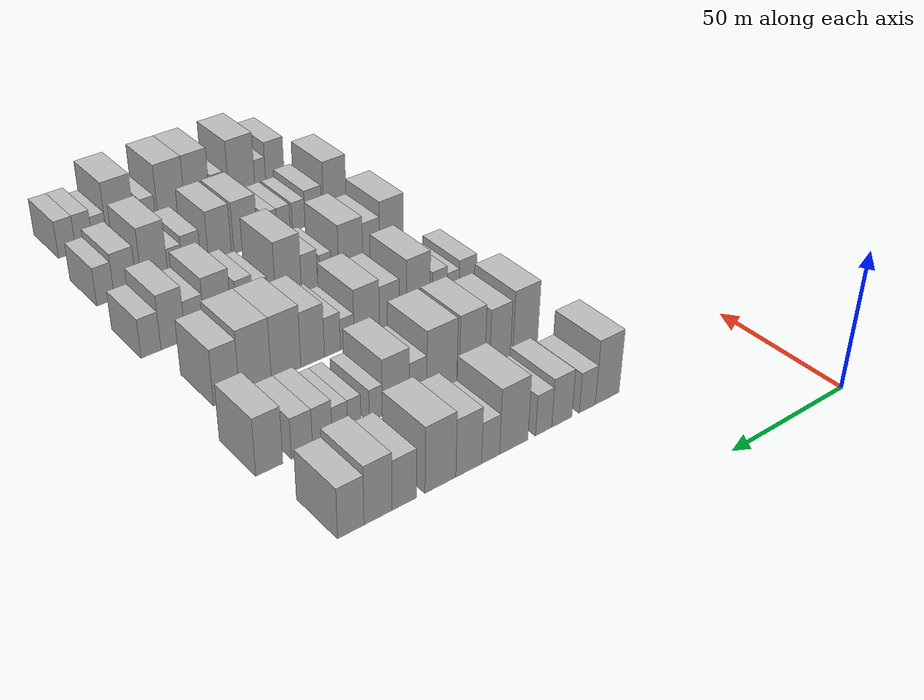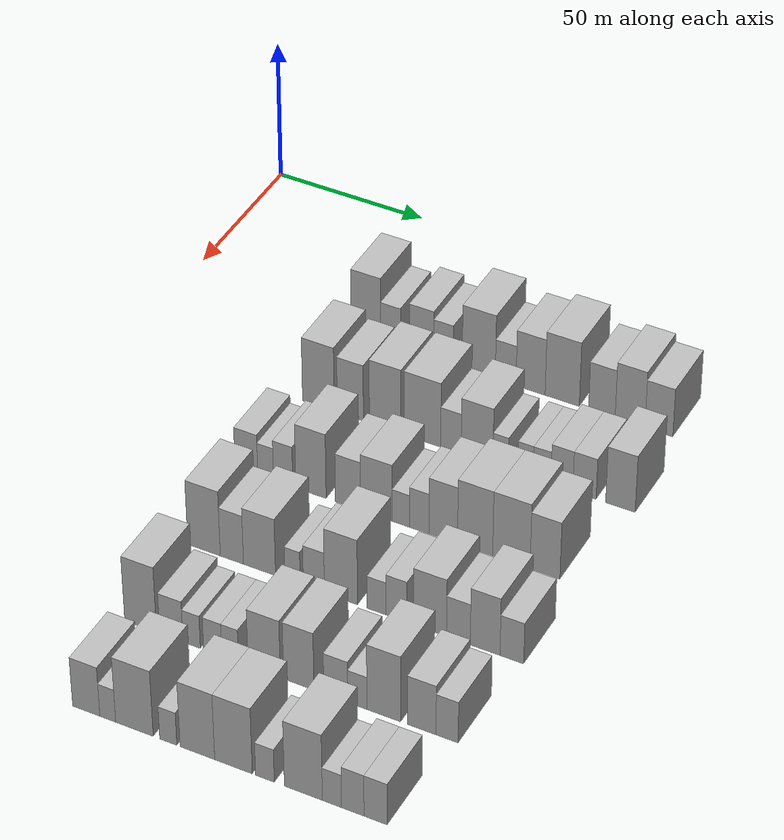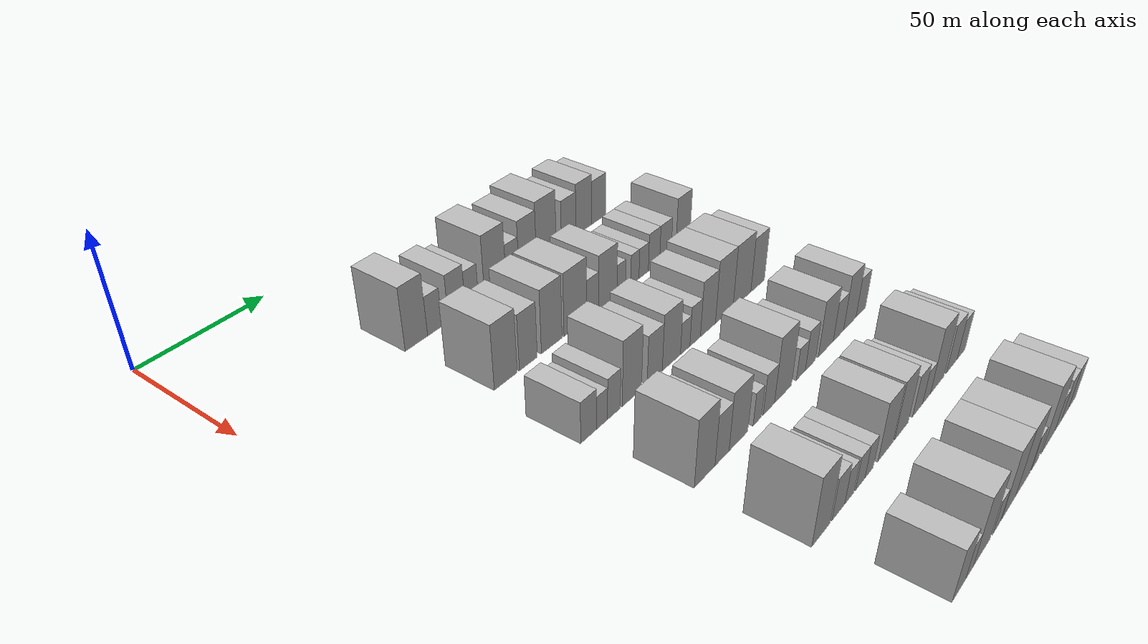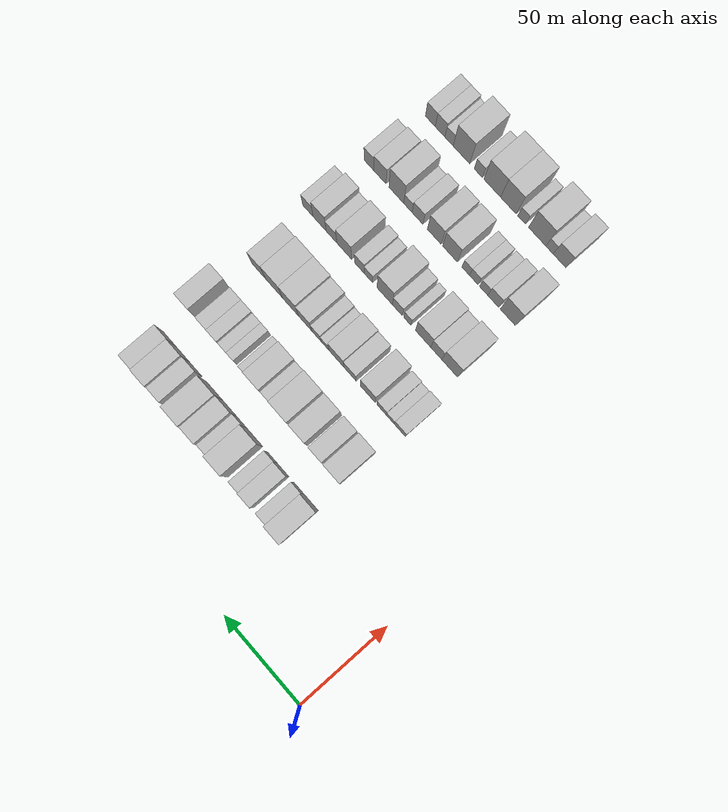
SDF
<sdf version="1.6">
 <world name="default">
  <model name="building_71">
   <static>1</static>
   <pose>50.0000 61.7541 0 0.000000 0.000000 0.000000</pose>
   <link name="link">
    <pose>0 0 12.00 0 0 0</pose>
    <collision name="collision"><geometry><box><size>20.0000 10.0399 24.0000</size></box></geometry></collision>
    <visual name="visual">
     <cast_shadows>0</cast_shadows>
     <geometry><box><size>20.0000 10.0399 24.0000</size></box></geometry>
     <material>
      <script>
       <uri>model://HANNAS_wall/materials/scripts</uri>
       <uri>model://HANNAS_wall/materials/textures</uri>
       <name>vrc/HANNAS_wall</name>
      </script>
     </material>
    </visual>
   </link>
  </model>
  <model name="building_72">
   <static>1</static>
   <pose>50.0000 70.1009 0 0.000000 0.000000 0.000000</pose>
   <link name="link">
    <pose>0 0 7.50 0 0 0</pose>
    <collision name="collision"><geometry><box><size>20.0000 6.6538 15.0000</size></box></geometry></collision>
    <visual name="visual">
     <cast_shadows>0</cast_shadows>
     <geometry><box><size>20.0000 6.6538 15.0000</size></box></geometry>
     <material>
      <script>
       <uri>model://HANNAS_wall/materials/scripts</uri>
       <uri>model://HANNAS_wall/materials/textures</uri>
       <name>vrc/HANNAS_wall</name>
      </script>
     </material>
    </visual>
   </link>
  </model>
  <model name="building_73">
   <static>1</static>
   <pose>50.0000 80.5218 0 0.000000 0.000000 0.000000</pose>
   <link name="link">
    <pose>0 0 9.00 0 0 0</pose>
    <collision name="collision"><geometry><box><size>20.0000 8.1881 18.0000</size></box></geometry></collision>
    <visual name="visual">
     <cast_shadows>0</cast_shadows>
     <geometry><box><size>20.0000 8.1881 18.0000</size></box></geometry>
     <material>
      <script>
       <uri>model://HANNAS_wall/materials/scripts</uri>
       <uri>model://HANNAS_wall/materials/textures</uri>
       <name>vrc/HANNAS_wall</name>
      </script>
     </material>
    </visual>
   </link>
  </model>
  <model name="building_74">
   <static>1</static>
   <pose>50.0000 87.8387 0 0.000000 0.000000 0.000000</pose>
   <link name="link">
    <pose>0 0 7.50 0 0 0</pose>
    <collision name="collision"><geometry><box><size>20.0000 6.4455 15.0000</size></box></geometry></collision>
    <visual name="visual">
     <cast_shadows>0</cast_shadows>
     <geometry><box><size>20.0000 6.4455 15.0000</size></box></geometry>
     <material>
      <script>
       <uri>model://HANNAS_wall/materials/scripts</uri>
       <uri>model://HANNAS_wall/materials/textures</uri>
       <name>vrc/HANNAS_wall</name>
      </script>
     </material>
    </visual>
   </link>
  </model>
  <model name="building_75">
   <static>1</static>
   <pose>50.0000 99.5587 0 0.000000 0.000000 0.000000</pose>
   <link name="link">
    <pose>0 0 12.00 0 0 0</pose>
    <collision name="collision"><geometry><box><size>20.0000 10.9945 24.0000</size></box></geometry></collision>
    <visual name="visual">
     <cast_shadows>0</cast_shadows>
     <geometry><box><size>20.0000 10.9945 24.0000</size></box></geometry>
     <material>
      <script>
       <uri>model://HANNAS_wall/materials/scripts</uri>
       <uri>model://HANNAS_wall/materials/textures</uri>
       <name>vrc/HANNAS_wall</name>
      </script>
     </material>
    </visual>
   </link>
  </model>
  <model name="building_76">
   <static>1</static>
   <pose>50.0000 108.4720 0 0.000000 0.000000 0.000000</pose>
   <link name="link">
    <pose>0 0 7.50 0 0 0</pose>
    <collision name="collision"><geometry><box><size>20.0000 6.8321 15.0000</size></box></geometry></collision>
    <visual name="visual">
     <cast_shadows>0</cast_shadows>
     <geometry><box><size>20.0000 6.8321 15.0000</size></box></geometry>
     <material>
      <script>
       <uri>model://HANNAS_wall/materials/scripts</uri>
       <uri>model://HANNAS_wall/materials/textures</uri>
       <name>vrc/HANNAS_wall</name>
      </script>
     </material>
    </visual>
   </link>
  </model>
  <model name="building_77">
   <static>1</static>
   <pose>50.0000 116.6482 0 0.000000 0.000000 0.000000</pose>
   <link name="link">
    <pose>0 0 10.50 0 0 0</pose>
    <collision name="collision"><geometry><box><size>20.0000 9.5204 21.0000</size></box></geometry></collision>
    <visual name="visual">
     <cast_shadows>0</cast_shadows>
     <geometry><box><size>20.0000 9.5204 21.0000</size></box></geometry>
     <material>
      <script>
       <uri>model://HANNAS_wall/materials/scripts</uri>
       <uri>model://HANNAS_wall/materials/textures</uri>
       <name>vrc/HANNAS_wall</name>
      </script>
     </material>
    </visual>
   </link>
  </model>
  <model name="building_78">
   <static>1</static>
   <pose>50.0000 126.9865 0 0.000000 0.000000 0.000000</pose>
   <link name="link">
    <pose>0 0 12.00 0 0 0</pose>
    <collision name="collision"><geometry><box><size>20.0000 11.1562 24.0000</size></box></geometry></collision>
    <visual name="visual">
     <cast_shadows>0</cast_shadows>
     <geometry><box><size>20.0000 11.1562 24.0000</size></box></geometry>
     <material>
      <script>
       <uri>model://HANNAS_wall/materials/scripts</uri>
       <uri>model://HANNAS_wall/materials/textures</uri>
       <name>vrc/HANNAS_wall</name>
      </script>
     </material>
    </visual>
   </link>
  </model>
  <model name="building_79">
   <static>1</static>
   <pose>50.0000 139.8486 0 0.000000 0.000000 0.000000</pose>
   <link name="link">
    <pose>0 0 9.00 0 0 0</pose>
    <collision name="collision"><geometry><box><size>20.0000 8.5680 18.0000</size></box></geometry></collision>
    <visual name="visual">
     <cast_shadows>0</cast_shadows>
     <geometry><box><size>20.0000 8.5680 18.0000</size></box></geometry>
     <material>
      <script>
       <uri>model://HANNAS_wall/materials/scripts</uri>
       <uri>model://HANNAS_wall/materials/textures</uri>
       <name>vrc/HANNAS_wall</name>
      </script>
     </material>
    </visual>
   </link>
  </model>
  <model name="building_80">
   <static>1</static>
   <pose>50.0000 148.9144 0 0.000000 0.000000 0.000000</pose>
   <link name="link">
    <pose>0 0 10.50 0 0 0</pose>
    <collision name="collision"><geometry><box><size>20.0000 9.5637 21.0000</size></box></geometry></collision>
    <visual name="visual">
     <cast_shadows>0</cast_shadows>
     <geometry><box><size>20.0000 9.5637 21.0000</size></box></geometry>
     <material>
      <script>
       <uri>model://HANNAS_wall/materials/scripts</uri>
       <uri>model://HANNAS_wall/materials/textures</uri>
       <name>vrc/HANNAS_wall</name>
      </script>
     </material>
    </visual>
   </link>
  </model>
  <model name="building_81">
   <static>1</static>
   <pose>50.0000 158.1502 0 0.000000 0.000000 0.000000</pose>
   <link name="link">
    <pose>0 0 9.00 0 0 0</pose>
    <collision name="collision"><geometry><box><size>20.0000 8.9079 18.0000</size></box></geometry></collision>
    <visual name="visual">
     <cast_shadows>0</cast_shadows>
     <geometry><box><size>20.0000 8.9079 18.0000</size></box></geometry>
     <material>
      <script>
       <uri>model://HANNAS_wall/materials/scripts</uri>
       <uri>model://HANNAS_wall/materials/textures</uri>
       <name>vrc/HANNAS_wall</name>
      </script>
     </material>
    </visual>
   </link>
  </model>
  <model name="building_196">
   <static>1</static>
   <pose>85.0000 64.3721 0 0.000000 0.000000 0.000000</pose>
   <link name="link">
    <pose>0 0 12.00 0 0 0</pose>
    <collision name="collision"><geometry><box><size>20.0000 10.5826 24.0000</size></box></geometry></collision>
    <visual name="visual">
     <cast_shadows>0</cast_shadows>
     <geometry><box><size>20.0000 10.5826 24.0000</size></box></geometry>
     <material>
      <script>
       <uri>model://HANNAS_wall/materials/scripts</uri>
       <uri>model://HANNAS_wall/materials/textures</uri>
       <name>vrc/HANNAS_wall</name>
      </script>
     </material>
    </visual>
   </link>
  </model>
  <model name="building_197">
   <static>1</static>
   <pose>85.0000 74.9845 0 0.000000 0.000000 0.000000</pose>
   <link name="link">
    <pose>0 0 10.50 0 0 0</pose>
    <collision name="collision"><geometry><box><size>20.0000 8.6422 21.0000</size></box></geometry></collision>
    <visual name="visual">
     <cast_shadows>0</cast_shadows>
     <geometry><box><size>20.0000 8.6422 21.0000</size></box></geometry>
     <material>
      <script>
       <uri>model://HANNAS_wall/materials/scripts</uri>
       <uri>model://HANNAS_wall/materials/textures</uri>
       <name>vrc/HANNAS_wall</name>
      </script>
     </material>
    </visual>
   </link>
  </model>
  <model name="building_198">
   <static>1</static>
   <pose>85.0000 86.4970 0 0.000000 0.000000 0.000000</pose>
   <link name="link">
    <pose>0 0 12.00 0 0 0</pose>
    <collision name="collision"><geometry><box><size>20.0000 10.3829 24.0000</size></box></geometry></collision>
    <visual name="visual">
     <cast_shadows>0</cast_shadows>
     <geometry><box><size>20.0000 10.3829 24.0000</size></box></geometry>
     <material>
      <script>
       <uri>model://HANNAS_wall/materials/scripts</uri>
       <uri>model://HANNAS_wall/materials/textures</uri>
       <name>vrc/HANNAS_wall</name>
      </script>
     </material>
    </visual>
   </link>
  </model>
  <model name="building_199">
   <static>1</static>
   <pose>85.0000 98.6507 0 0.000000 0.000000 0.000000</pose>
   <link name="link">
    <pose>0 0 12.00 0 0 0</pose>
    <collision name="collision"><geometry><box><size>20.0000 11.9244 24.0000</size></box></geometry></collision>
    <visual name="visual">
     <cast_shadows>0</cast_shadows>
     <geometry><box><size>20.0000 11.9244 24.0000</size></box></geometry>
     <material>
      <script>
       <uri>model://HANNAS_wall/materials/scripts</uri>
       <uri>model://HANNAS_wall/materials/textures</uri>
       <name>vrc/HANNAS_wall</name>
      </script>
     </material>
    </visual>
   </link>
  </model>
  <model name="building_200">
   <static>1</static>
   <pose>85.0000 107.9193 0 0.000000 0.000000 0.000000</pose>
   <link name="link">
    <pose>0 0 7.50 0 0 0</pose>
    <collision name="collision"><geometry><box><size>20.0000 6.6128 15.0000</size></box></geometry></collision>
    <visual name="visual">
     <cast_shadows>0</cast_shadows>
     <geometry><box><size>20.0000 6.6128 15.0000</size></box></geometry>
     <material>
      <script>
       <uri>model://HANNAS_wall/materials/scripts</uri>
       <uri>model://HANNAS_wall/materials/textures</uri>
       <name>vrc/HANNAS_wall</name>
      </script>
     </material>
    </visual>
   </link>
  </model>
  <model name="building_201">
   <static>1</static>
   <pose>85.0000 116.3655 0 0.000000 0.000000 0.000000</pose>
   <link name="link">
    <pose>0 0 10.50 0 0 0</pose>
    <collision name="collision"><geometry><box><size>20.0000 10.2796 21.0000</size></box></geometry></collision>
    <visual name="visual">
     <cast_shadows>0</cast_shadows>
     <geometry><box><size>20.0000 10.2796 21.0000</size></box></geometry>
     <material>
      <script>
       <uri>model://HANNAS_wall/materials/scripts</uri>
       <uri>model://HANNAS_wall/materials/textures</uri>
       <name>vrc/HANNAS_wall</name>
      </script>
     </material>
    </visual>
   </link>
  </model>
  <model name="building_202">
   <static>1</static>
   <pose>85.0000 123.9801 0 0.000000 0.000000 0.000000</pose>
   <link name="link">
    <pose>0 0 6.00 0 0 0</pose>
    <collision name="collision"><geometry><box><size>20.0000 4.9497 12.0000</size></box></geometry></collision>
    <visual name="visual">
     <cast_shadows>0</cast_shadows>
     <geometry><box><size>20.0000 4.9497 12.0000</size></box></geometry>
     <material>
      <script>
       <uri>model://HANNAS_wall/materials/scripts</uri>
       <uri>model://HANNAS_wall/materials/textures</uri>
       <name>vrc/HANNAS_wall</name>
      </script>
     </material>
    </visual>
   </link>
  </model>
  <model name="building_203">
   <static>1</static>
   <pose>85.0000 131.8973 0 0.000000 0.000000 0.000000</pose>
   <link name="link">
    <pose>0 0 6.00 0 0 0</pose>
    <collision name="collision"><geometry><box><size>20.0000 4.8847 12.0000</size></box></geometry></collision>
    <visual name="visual">
     <cast_shadows>0</cast_shadows>
     <geometry><box><size>20.0000 4.8847 12.0000</size></box></geometry>
     <material>
      <script>
       <uri>model://HANNAS_wall/materials/scripts</uri>
       <uri>model://HANNAS_wall/materials/textures</uri>
       <name>vrc/HANNAS_wall</name>
      </script>
     </material>
    </visual>
   </link>
  </model>
  <model name="building_204">
   <static>1</static>
   <pose>85.0000 137.1757 0 0.000000 0.000000 0.000000</pose>
   <link name="link">
    <pose>0 0 6.00 0 0 0</pose>
    <collision name="collision"><geometry><box><size>20.0000 5.6721 12.0000</size></box></geometry></collision>
    <visual name="visual">
     <cast_shadows>0</cast_shadows>
     <geometry><box><size>20.0000 5.6721 12.0000</size></box></geometry>
     <material>
      <script>
       <uri>model://HANNAS_wall/materials/scripts</uri>
       <uri>model://HANNAS_wall/materials/textures</uri>
       <name>vrc/HANNAS_wall</name>
      </script>
     </material>
    </visual>
   </link>
  </model>
  <model name="building_205">
   <static>1</static>
   <pose>85.0000 143.5025 0 0.000000 0.000000 0.000000</pose>
   <link name="link">
    <pose>0 0 7.50 0 0 0</pose>
    <collision name="collision"><geometry><box><size>20.0000 6.9814 15.0000</size></box></geometry></collision>
    <visual name="visual">
     <cast_shadows>0</cast_shadows>
     <geometry><box><size>20.0000 6.9814 15.0000</size></box></geometry>
     <material>
      <script>
       <uri>model://HANNAS_wall/materials/scripts</uri>
       <uri>model://HANNAS_wall/materials/textures</uri>
       <name>vrc/HANNAS_wall</name>
      </script>
     </material>
    </visual>
   </link>
  </model>
  <model name="building_206">
   <static>1</static>
   <pose>85.0000 150.6519 0 0.000000 0.000000 0.000000</pose>
   <link name="link">
    <pose>0 0 7.50 0 0 0</pose>
    <collision name="collision"><geometry><box><size>20.0000 7.3173 15.0000</size></box></geometry></collision>
    <visual name="visual">
     <cast_shadows>0</cast_shadows>
     <geometry><box><size>20.0000 7.3173 15.0000</size></box></geometry>
     <material>
      <script>
       <uri>model://HANNAS_wall/materials/scripts</uri>
       <uri>model://HANNAS_wall/materials/textures</uri>
       <name>vrc/HANNAS_wall</name>
      </script>
     </material>
    </visual>
   </link>
  </model>
  <model name="building_207">
   <static>1</static>
   <pose>85.0000 161.9332 0 0.000000 0.000000 0.000000</pose>
   <link name="link">
    <pose>0 0 10.50 0 0 0</pose>
    <collision name="collision"><geometry><box><size>20.0000 9.2454 21.0000</size></box></geometry></collision>
    <visual name="visual">
     <cast_shadows>0</cast_shadows>
     <geometry><box><size>20.0000 9.2454 21.0000</size></box></geometry>
     <material>
      <script>
       <uri>model://HANNAS_wall/materials/scripts</uri>
       <uri>model://HANNAS_wall/materials/textures</uri>
       <name>vrc/HANNAS_wall</name>
      </script>
     </material>
    </visual>
   </link>
  </model>
  <model name="building_322">
   <static>1</static>
   <pose>120.0000 59.6474 0 0.000000 0.000000 0.000000</pose>
   <link name="link">
    <pose>0 0 7.50 0 0 0</pose>
    <collision name="collision"><geometry><box><size>20.0000 7.4870 15.0000</size></box></geometry></collision>
    <visual name="visual">
     <cast_shadows>0</cast_shadows>
     <geometry><box><size>20.0000 7.4870 15.0000</size></box></geometry>
     <material>
      <script>
       <uri>model://HANNAS_wall/materials/scripts</uri>
       <uri>model://HANNAS_wall/materials/textures</uri>
       <name>vrc/HANNAS_wall</name>
      </script>
     </material>
    </visual>
   </link>
  </model>
  <model name="building_323">
   <static>1</static>
   <pose>120.0000 65.9803 0 0.000000 0.000000 0.000000</pose>
   <link name="link">
    <pose>0 0 6.00 0 0 0</pose>
    <collision name="collision"><geometry><box><size>20.0000 5.1787 12.0000</size></box></geometry></collision>
    <visual name="visual">
     <cast_shadows>0</cast_shadows>
     <geometry><box><size>20.0000 5.1787 12.0000</size></box></geometry>
     <material>
      <script>
       <uri>model://HANNAS_wall/materials/scripts</uri>
       <uri>model://HANNAS_wall/materials/textures</uri>
       <name>vrc/HANNAS_wall</name>
      </script>
     </material>
    </visual>
   </link>
  </model>
  <model name="building_324">
   <static>1</static>
   <pose>120.0000 71.7191 0 0.000000 0.000000 0.000000</pose>
   <link name="link">
    <pose>0 0 7.50 0 0 0</pose>
    <collision name="collision"><geometry><box><size>20.0000 6.2989 15.0000</size></box></geometry></collision>
    <visual name="visual">
     <cast_shadows>0</cast_shadows>
     <geometry><box><size>20.0000 6.2989 15.0000</size></box></geometry>
     <material>
      <script>
       <uri>model://HANNAS_wall/materials/scripts</uri>
       <uri>model://HANNAS_wall/materials/textures</uri>
       <name>vrc/HANNAS_wall</name>
      </script>
     </material>
    </visual>
   </link>
  </model>
  <model name="building_325">
   <static>1</static>
   <pose>120.0000 80.7890 0 0.000000 0.000000 0.000000</pose>
   <link name="link">
    <pose>0 0 12.00 0 0 0</pose>
    <collision name="collision"><geometry><box><size>20.0000 9.8409 24.0000</size></box></geometry></collision>
    <visual name="visual">
     <cast_shadows>0</cast_shadows>
     <geometry><box><size>20.0000 9.8409 24.0000</size></box></geometry>
     <material>
      <script>
       <uri>model://HANNAS_wall/materials/scripts</uri>
       <uri>model://HANNAS_wall/materials/textures</uri>
       <name>vrc/HANNAS_wall</name>
      </script>
     </material>
    </visual>
   </link>
  </model>
  <model name="building_326">
   <static>1</static>
   <pose>120.0000 92.7691 0 0.000000 0.000000 0.000000</pose>
   <link name="link">
    <pose>0 0 9.00 0 0 0</pose>
    <collision name="collision"><geometry><box><size>20.0000 8.1193 18.0000</size></box></geometry></collision>
    <visual name="visual">
     <cast_shadows>0</cast_shadows>
     <geometry><box><size>20.0000 8.1193 18.0000</size></box></geometry>
     <material>
      <script>
       <uri>model://HANNAS_wall/materials/scripts</uri>
       <uri>model://HANNAS_wall/materials/textures</uri>
       <name>vrc/HANNAS_wall</name>
      </script>
     </material>
    </visual>
   </link>
  </model>
  <model name="building_327">
   <static>1</static>
   <pose>120.0000 101.8845 0 0.000000 0.000000 0.000000</pose>
   <link name="link">
    <pose>0 0 10.50 0 0 0</pose>
    <collision name="collision"><geometry><box><size>20.0000 10.1113 21.0000</size></box></geometry></collision>
    <visual name="visual">
     <cast_shadows>0</cast_shadows>
     <geometry><box><size>20.0000 10.1113 21.0000</size></box></geometry>
     <material>
      <script>
       <uri>model://HANNAS_wall/materials/scripts</uri>
       <uri>model://HANNAS_wall/materials/textures</uri>
       <name>vrc/HANNAS_wall</name>
      </script>
     </material>
    </visual>
   </link>
  </model>
  <model name="building_328">
   <static>1</static>
   <pose>120.0000 109.6472 0 0.000000 0.000000 0.000000</pose>
   <link name="link">
    <pose>0 0 6.00 0 0 0</pose>
    <collision name="collision"><geometry><box><size>20.0000 5.4142 12.0000</size></box></geometry></collision>
    <visual name="visual">
     <cast_shadows>0</cast_shadows>
     <geometry><box><size>20.0000 5.4142 12.0000</size></box></geometry>
     <material>
      <script>
       <uri>model://HANNAS_wall/materials/scripts</uri>
       <uri>model://HANNAS_wall/materials/textures</uri>
       <name>vrc/HANNAS_wall</name>
      </script>
     </material>
    </visual>
   </link>
  </model>
  <model name="building_329">
   <static>1</static>
   <pose>120.0000 115.4633 0 0.000000 0.000000 0.000000</pose>
   <link name="link">
    <pose>0 0 7.50 0 0 0</pose>
    <collision name="collision"><geometry><box><size>20.0000 6.2179 15.0000</size></box></geometry></collision>
    <visual name="visual">
     <cast_shadows>0</cast_shadows>
     <geometry><box><size>20.0000 6.2179 15.0000</size></box></geometry>
     <material>
      <script>
       <uri>model://HANNAS_wall/materials/scripts</uri>
       <uri>model://HANNAS_wall/materials/textures</uri>
       <name>vrc/HANNAS_wall</name>
      </script>
     </material>
    </visual>
   </link>
  </model>
  <model name="building_330">
   <static>1</static>
   <pose>120.0000 123.0967 0 0.000000 0.000000 0.000000</pose>
   <link name="link">
    <pose>0 0 10.50 0 0 0</pose>
    <collision name="collision"><geometry><box><size>20.0000 9.0490 21.0000</size></box></geometry></collision>
    <visual name="visual">
     <cast_shadows>0</cast_shadows>
     <geometry><box><size>20.0000 9.0490 21.0000</size></box></geometry>
     <material>
      <script>
       <uri>model://HANNAS_wall/materials/scripts</uri>
       <uri>model://HANNAS_wall/materials/textures</uri>
       <name>vrc/HANNAS_wall</name>
      </script>
     </material>
    </visual>
   </link>
  </model>
  <model name="building_331">
   <static>1</static>
   <pose>120.0000 133.1397 0 0.000000 0.000000 0.000000</pose>
   <link name="link">
    <pose>0 0 12.00 0 0 0</pose>
    <collision name="collision"><geometry><box><size>20.0000 11.0369 24.0000</size></box></geometry></collision>
    <visual name="visual">
     <cast_shadows>0</cast_shadows>
     <geometry><box><size>20.0000 11.0369 24.0000</size></box></geometry>
     <material>
      <script>
       <uri>model://HANNAS_wall/materials/scripts</uri>
       <uri>model://HANNAS_wall/materials/textures</uri>
       <name>vrc/HANNAS_wall</name>
      </script>
     </material>
    </visual>
   </link>
  </model>
  <model name="building_332">
   <static>1</static>
   <pose>120.0000 144.4785 0 0.000000 0.000000 0.000000</pose>
   <link name="link">
    <pose>0 0 12.00 0 0 0</pose>
    <collision name="collision"><geometry><box><size>20.0000 11.6407 24.0000</size></box></geometry></collision>
    <visual name="visual">
     <cast_shadows>0</cast_shadows>
     <geometry><box><size>20.0000 11.6407 24.0000</size></box></geometry>
     <material>
      <script>
       <uri>model://HANNAS_wall/materials/scripts</uri>
       <uri>model://HANNAS_wall/materials/textures</uri>
       <name>vrc/HANNAS_wall</name>
      </script>
     </material>
    </visual>
   </link>
  </model>
  <model name="building_333">
   <static>1</static>
   <pose>120.0000 154.9100 0 0.000000 0.000000 0.000000</pose>
   <link name="link">
    <pose>0 0 10.50 0 0 0</pose>
    <collision name="collision"><geometry><box><size>20.0000 9.2223 21.0000</size></box></geometry></collision>
    <visual name="visual">
     <cast_shadows>0</cast_shadows>
     <geometry><box><size>20.0000 9.2223 21.0000</size></box></geometry>
     <material>
      <script>
       <uri>model://HANNAS_wall/materials/scripts</uri>
       <uri>model://HANNAS_wall/materials/textures</uri>
       <name>vrc/HANNAS_wall</name>
      </script>
     </material>
    </visual>
   </link>
  </model>
  <model name="building_452">
   <static>1</static>
   <pose>155.0000 65.5364 0 0.000000 0.000000 0.000000</pose>
   <link name="link">
    <pose>0 0 12.00 0 0 0</pose>
    <collision name="collision"><geometry><box><size>20.0000 10.4899 24.0000</size></box></geometry></collision>
    <visual name="visual">
     <cast_shadows>0</cast_shadows>
     <geometry><box><size>20.0000 10.4899 24.0000</size></box></geometry>
     <material>
      <script>
       <uri>model://HANNAS_wall/materials/scripts</uri>
       <uri>model://HANNAS_wall/materials/textures</uri>
       <name>vrc/HANNAS_wall</name>
      </script>
     </material>
    </visual>
   </link>
  </model>
  <model name="building_453">
   <static>1</static>
   <pose>155.0000 74.4987 0 0.000000 0.000000 0.000000</pose>
   <link name="link">
    <pose>0 0 9.00 0 0 0</pose>
    <collision name="collision"><geometry><box><size>20.0000 7.4346 18.0000</size></box></geometry></collision>
    <visual name="visual">
     <cast_shadows>0</cast_shadows>
     <geometry><box><size>20.0000 7.4346 18.0000</size></box></geometry>
     <material>
      <script>
       <uri>model://HANNAS_wall/materials/scripts</uri>
       <uri>model://HANNAS_wall/materials/textures</uri>
       <name>vrc/HANNAS_wall</name>
      </script>
     </material>
    </visual>
   </link>
  </model>
  <model name="building_454">
   <static>1</static>
   <pose>155.0000 83.3402 0 0.000000 0.000000 0.000000</pose>
   <link name="link">
    <pose>0 0 10.50 0 0 0</pose>
    <collision name="collision"><geometry><box><size>20.0000 10.2484 21.0000</size></box></geometry></collision>
    <visual name="visual">
     <cast_shadows>0</cast_shadows>
     <geometry><box><size>20.0000 10.2484 21.0000</size></box></geometry>
     <material>
      <script>
       <uri>model://HANNAS_wall/materials/scripts</uri>
       <uri>model://HANNAS_wall/materials/textures</uri>
       <name>vrc/HANNAS_wall</name>
      </script>
     </material>
    </visual>
   </link>
  </model>
  <model name="building_455">
   <static>1</static>
   <pose>155.0000 93.8650 0 0.000000 0.000000 0.000000</pose>
   <link name="link">
    <pose>0 0 6.00 0 0 0</pose>
    <collision name="collision"><geometry><box><size>20.0000 4.8014 12.0000</size></box></geometry></collision>
    <visual name="visual">
     <cast_shadows>0</cast_shadows>
     <geometry><box><size>20.0000 4.8014 12.0000</size></box></geometry>
     <material>
      <script>
       <uri>model://HANNAS_wall/materials/scripts</uri>
       <uri>model://HANNAS_wall/materials/textures</uri>
       <name>vrc/HANNAS_wall</name>
      </script>
     </material>
    </visual>
   </link>
  </model>
  <model name="building_456">
   <static>1</static>
   <pose>155.0000 100.5905 0 0.000000 0.000000 0.000000</pose>
   <link name="link">
    <pose>0 0 7.50 0 0 0</pose>
    <collision name="collision"><geometry><box><size>20.0000 6.6495 15.0000</size></box></geometry></collision>
    <visual name="visual">
     <cast_shadows>0</cast_shadows>
     <geometry><box><size>20.0000 6.6495 15.0000</size></box></geometry>
     <material>
      <script>
       <uri>model://HANNAS_wall/materials/scripts</uri>
       <uri>model://HANNAS_wall/materials/textures</uri>
       <name>vrc/HANNAS_wall</name>
      </script>
     </material>
    </visual>
   </link>
  </model>
  <model name="building_457">
   <static>1</static>
   <pose>155.0000 109.1081 0 0.000000 0.000000 0.000000</pose>
   <link name="link">
    <pose>0 0 12.00 0 0 0</pose>
    <collision name="collision"><geometry><box><size>20.0000 10.3857 24.0000</size></box></geometry></collision>
    <visual name="visual">
     <cast_shadows>0</cast_shadows>
     <geometry><box><size>20.0000 10.3857 24.0000</size></box></geometry>
     <material>
      <script>
       <uri>model://HANNAS_wall/materials/scripts</uri>
       <uri>model://HANNAS_wall/materials/textures</uri>
       <name>vrc/HANNAS_wall</name>
      </script>
     </material>
    </visual>
   </link>
  </model>
  <model name="building_458">
   <static>1</static>
   <pose>155.0000 120.2026 0 0.000000 0.000000 0.000000</pose>
   <link name="link">
    <pose>0 0 6.00 0 0 0</pose>
    <collision name="collision"><geometry><box><size>20.0000 5.8034 12.0000</size></box></geometry></collision>
    <visual name="visual">
     <cast_shadows>0</cast_shadows>
     <geometry><box><size>20.0000 5.8034 12.0000</size></box></geometry>
     <material>
      <script>
       <uri>model://HANNAS_wall/materials/scripts</uri>
       <uri>model://HANNAS_wall/materials/textures</uri>
       <name>vrc/HANNAS_wall</name>
      </script>
     </material>
    </visual>
   </link>
  </model>
  <model name="building_459">
   <static>1</static>
   <pose>155.0000 126.3788 0 0.000000 0.000000 0.000000</pose>
   <link name="link">
    <pose>0 0 7.50 0 0 0</pose>
    <collision name="collision"><geometry><box><size>20.0000 6.5488 15.0000</size></box></geometry></collision>
    <visual name="visual">
     <cast_shadows>0</cast_shadows>
     <geometry><box><size>20.0000 6.5488 15.0000</size></box></geometry>
     <material>
      <script>
       <uri>model://HANNAS_wall/materials/scripts</uri>
       <uri>model://HANNAS_wall/materials/textures</uri>
       <name>vrc/HANNAS_wall</name>
      </script>
     </material>
    </visual>
   </link>
  </model>
  <model name="building_460">
   <static>1</static>
   <pose>155.0000 136.7343 0 0.000000 0.000000 0.000000</pose>
   <link name="link">
    <pose>0 0 10.50 0 0 0</pose>
    <collision name="collision"><geometry><box><size>20.0000 10.1623 21.0000</size></box></geometry></collision>
    <visual name="visual">
     <cast_shadows>0</cast_shadows>
     <geometry><box><size>20.0000 10.1623 21.0000</size></box></geometry>
     <material>
      <script>
       <uri>model://HANNAS_wall/materials/scripts</uri>
       <uri>model://HANNAS_wall/materials/textures</uri>
       <name>vrc/HANNAS_wall</name>
      </script>
     </material>
    </visual>
   </link>
  </model>
  <model name="building_461">
   <static>1</static>
   <pose>155.0000 145.4423 0 0.000000 0.000000 0.000000</pose>
   <link name="link">
    <pose>0 0 7.50 0 0 0</pose>
    <collision name="collision"><geometry><box><size>20.0000 7.2538 15.0000</size></box></geometry></collision>
    <visual name="visual">
     <cast_shadows>0</cast_shadows>
     <geometry><box><size>20.0000 7.2538 15.0000</size></box></geometry>
     <material>
      <script>
       <uri>model://HANNAS_wall/materials/scripts</uri>
       <uri>model://HANNAS_wall/materials/textures</uri>
       <name>vrc/HANNAS_wall</name>
      </script>
     </material>
    </visual>
   </link>
  </model>
  <model name="building_462">
   <static>1</static>
   <pose>155.0000 153.5835 0 0.000000 0.000000 0.000000</pose>
   <link name="link">
    <pose>0 0 10.50 0 0 0</pose>
    <collision name="collision"><geometry><box><size>20.0000 9.0287 21.0000</size></box></geometry></collision>
    <visual name="visual">
     <cast_shadows>0</cast_shadows>
     <geometry><box><size>20.0000 9.0287 21.0000</size></box></geometry>
     <material>
      <script>
       <uri>model://HANNAS_wall/materials/scripts</uri>
       <uri>model://HANNAS_wall/materials/textures</uri>
       <name>vrc/HANNAS_wall</name>
      </script>
     </material>
    </visual>
   </link>
  </model>
  <model name="building_463">
   <static>1</static>
   <pose>155.0000 161.6916 0 0.000000 0.000000 0.000000</pose>
   <link name="link">
    <pose>0 0 7.50 0 0 0</pose>
    <collision name="collision"><geometry><box><size>20.0000 7.1875 15.0000</size></box></geometry></collision>
    <visual name="visual">
     <cast_shadows>0</cast_shadows>
     <geometry><box><size>20.0000 7.1875 15.0000</size></box></geometry>
     <material>
      <script>
       <uri>model://HANNAS_wall/materials/scripts</uri>
       <uri>model://HANNAS_wall/materials/textures</uri>
       <name>vrc/HANNAS_wall</name>
      </script>
     </material>
    </visual>
   </link>
  </model>
  <model name="building_583">
   <static>1</static>
   <pose>190.0000 65.4349 0 0.000000 0.000000 0.000000</pose>
   <link name="link">
    <pose>0 0 12.00 0 0 0</pose>
    <collision name="collision"><geometry><box><size>20.0000 10.0878 24.0000</size></box></geometry></collision>
    <visual name="visual">
     <cast_shadows>0</cast_shadows>
     <geometry><box><size>20.0000 10.0878 24.0000</size></box></geometry>
     <material>
      <script>
       <uri>model://HANNAS_wall/materials/scripts</uri>
       <uri>model://HANNAS_wall/materials/textures</uri>
       <name>vrc/HANNAS_wall</name>
      </script>
     </material>
    </visual>
   </link>
  </model>
  <model name="building_584">
   <static>1</static>
   <pose>190.0000 75.1539 0 0.000000 0.000000 0.000000</pose>
   <link name="link">
    <pose>0 0 7.50 0 0 0</pose>
    <collision name="collision"><geometry><box><size>20.0000 7.3502 15.0000</size></box></geometry></collision>
    <visual name="visual">
     <cast_shadows>0</cast_shadows>
     <geometry><box><size>20.0000 7.3502 15.0000</size></box></geometry>
     <material>
      <script>
       <uri>model://HANNAS_wall/materials/scripts</uri>
       <uri>model://HANNAS_wall/materials/textures</uri>
       <name>vrc/HANNAS_wall</name>
      </script>
     </material>
    </visual>
   </link>
  </model>
  <model name="building_585">
   <static>1</static>
   <pose>190.0000 81.5633 0 0.000000 0.000000 0.000000</pose>
   <link name="link">
    <pose>0 0 6.00 0 0 0</pose>
    <collision name="collision"><geometry><box><size>20.0000 5.4687 12.0000</size></box></geometry></collision>
    <visual name="visual">
     <cast_shadows>0</cast_shadows>
     <geometry><box><size>20.0000 5.4687 12.0000</size></box></geometry>
     <material>
      <script>
       <uri>model://HANNAS_wall/materials/scripts</uri>
       <uri>model://HANNAS_wall/materials/textures</uri>
       <name>vrc/HANNAS_wall</name>
      </script>
     </material>
    </visual>
   </link>
  </model>
  <model name="building_586">
   <static>1</static>
   <pose>190.0000 88.1389 0 0.000000 0.000000 0.000000</pose>
   <link name="link">
    <pose>0 0 6.00 0 0 0</pose>
    <collision name="collision"><geometry><box><size>20.0000 5.6824 12.0000</size></box></geometry></collision>
    <visual name="visual">
     <cast_shadows>0</cast_shadows>
     <geometry><box><size>20.0000 5.6824 12.0000</size></box></geometry>
     <material>
      <script>
       <uri>model://HANNAS_wall/materials/scripts</uri>
       <uri>model://HANNAS_wall/materials/textures</uri>
       <name>vrc/HANNAS_wall</name>
      </script>
     </material>
    </visual>
   </link>
  </model>
  <model name="building_587">
   <static>1</static>
   <pose>190.0000 93.5932 0 0.000000 0.000000 0.000000</pose>
   <link name="link">
    <pose>0 0 6.00 0 0 0</pose>
    <collision name="collision"><geometry><box><size>20.0000 5.2261 12.0000</size></box></geometry></collision>
    <visual name="visual">
     <cast_shadows>0</cast_shadows>
     <geometry><box><size>20.0000 5.2261 12.0000</size></box></geometry>
     <material>
      <script>
       <uri>model://HANNAS_wall/materials/scripts</uri>
       <uri>model://HANNAS_wall/materials/textures</uri>
       <name>vrc/HANNAS_wall</name>
      </script>
     </material>
    </visual>
   </link>
  </model>
  <model name="building_588">
   <static>1</static>
   <pose>190.0000 104.1864 0 0.000000 0.000000 0.000000</pose>
   <link name="link">
    <pose>0 0 10.50 0 0 0</pose>
    <collision name="collision"><geometry><box><size>20.0000 9.9603 21.0000</size></box></geometry></collision>
    <visual name="visual">
     <cast_shadows>0</cast_shadows>
     <geometry><box><size>20.0000 9.9603 21.0000</size></box></geometry>
     <material>
      <script>
       <uri>model://HANNAS_wall/materials/scripts</uri>
       <uri>model://HANNAS_wall/materials/textures</uri>
       <name>vrc/HANNAS_wall</name>
      </script>
     </material>
    </visual>
   </link>
  </model>
  <model name="building_589">
   <static>1</static>
   <pose>190.0000 114.8249 0 0.000000 0.000000 0.000000</pose>
   <link name="link">
    <pose>0 0 10.50 0 0 0</pose>
    <collision name="collision"><geometry><box><size>20.0000 9.3165 21.0000</size></box></geometry></collision>
    <visual name="visual">
     <cast_shadows>0</cast_shadows>
     <geometry><box><size>20.0000 9.3165 21.0000</size></box></geometry>
     <material>
      <script>
       <uri>model://HANNAS_wall/materials/scripts</uri>
       <uri>model://HANNAS_wall/materials/textures</uri>
       <name>vrc/HANNAS_wall</name>
      </script>
     </material>
    </visual>
   </link>
  </model>
  <model name="building_590">
   <static>1</static>
   <pose>190.0000 126.1535 0 0.000000 0.000000 0.000000</pose>
   <link name="link">
    <pose>0 0 7.50 0 0 0</pose>
    <collision name="collision"><geometry><box><size>20.0000 7.3408 15.0000</size></box></geometry></collision>
    <visual name="visual">
     <cast_shadows>0</cast_shadows>
     <geometry><box><size>20.0000 7.3408 15.0000</size></box></geometry>
     <material>
      <script>
       <uri>model://HANNAS_wall/materials/scripts</uri>
       <uri>model://HANNAS_wall/materials/textures</uri>
       <name>vrc/HANNAS_wall</name>
      </script>
     </material>
    </visual>
   </link>
  </model>
  <model name="building_591">
   <static>1</static>
   <pose>190.0000 132.7113 0 0.000000 0.000000 0.000000</pose>
   <link name="link">
    <pose>0 0 6.00 0 0 0</pose>
    <collision name="collision"><geometry><box><size>20.0000 5.7749 12.0000</size></box></geometry></collision>
    <visual name="visual">
     <cast_shadows>0</cast_shadows>
     <geometry><box><size>20.0000 5.7749 12.0000</size></box></geometry>
     <material>
      <script>
       <uri>model://HANNAS_wall/materials/scripts</uri>
       <uri>model://HANNAS_wall/materials/textures</uri>
       <name>vrc/HANNAS_wall</name>
      </script>
     </material>
    </visual>
   </link>
  </model>
  <model name="building_592">
   <static>1</static>
   <pose>190.0000 140.6819 0 0.000000 0.000000 0.000000</pose>
   <link name="link">
    <pose>0 0 12.00 0 0 0</pose>
    <collision name="collision"><geometry><box><size>20.0000 10.1664 24.0000</size></box></geometry></collision>
    <visual name="visual">
     <cast_shadows>0</cast_shadows>
     <geometry><box><size>20.0000 10.1664 24.0000</size></box></geometry>
     <material>
      <script>
       <uri>model://HANNAS_wall/materials/scripts</uri>
       <uri>model://HANNAS_wall/materials/textures</uri>
       <name>vrc/HANNAS_wall</name>
      </script>
     </material>
    </visual>
   </link>
  </model>
  <model name="building_593">
   <static>1</static>
   <pose>190.0000 152.0485 0 0.000000 0.000000 0.000000</pose>
   <link name="link">
    <pose>0 0 9.00 0 0 0</pose>
    <collision name="collision"><geometry><box><size>20.0000 8.5668 18.0000</size></box></geometry></collision>
    <visual name="visual">
     <cast_shadows>0</cast_shadows>
     <geometry><box><size>20.0000 8.5668 18.0000</size></box></geometry>
     <material>
      <script>
       <uri>model://HANNAS_wall/materials/scripts</uri>
       <uri>model://HANNAS_wall/materials/textures</uri>
       <name>vrc/HANNAS_wall</name>
      </script>
     </material>
    </visual>
   </link>
  </model>
  <model name="building_594">
   <static>1</static>
   <pose>190.0000 159.6384 0 0.000000 0.000000 0.000000</pose>
   <link name="link">
    <pose>0 0 7.50 0 0 0</pose>
    <collision name="collision"><geometry><box><size>20.0000 6.6129 15.0000</size></box></geometry></collision>
    <visual name="visual">
     <cast_shadows>0</cast_shadows>
     <geometry><box><size>20.0000 6.6129 15.0000</size></box></geometry>
     <material>
      <script>
       <uri>model://HANNAS_wall/materials/scripts</uri>
       <uri>model://HANNAS_wall/materials/textures</uri>
       <name>vrc/HANNAS_wall</name>
      </script>
     </material>
    </visual>
   </link>
  </model>
  <model name="building_712">
   <static>1</static>
   <pose>225.0000 69.1062 0 0.000000 0.000000 0.000000</pose>
   <link name="link">
    <pose>0 0 9.00 0 0 0</pose>
    <collision name="collision"><geometry><box><size>20.0000 8.4714 18.0000</size></box></geometry></collision>
    <visual name="visual">
     <cast_shadows>0</cast_shadows>
     <geometry><box><size>20.0000 8.4714 18.0000</size></box></geometry>
     <material>
      <script>
       <uri>model://HANNAS_wall/materials/scripts</uri>
       <uri>model://HANNAS_wall/materials/textures</uri>
       <name>vrc/HANNAS_wall</name>
      </script>
     </material>
    </visual>
   </link>
  </model>
  <model name="building_713">
   <static>1</static>
   <pose>225.0000 75.7941 0 0.000000 0.000000 0.000000</pose>
   <link name="link">
    <pose>0 0 6.00 0 0 0</pose>
    <collision name="collision"><geometry><box><size>20.0000 4.9045 12.0000</size></box></geometry></collision>
    <visual name="visual">
     <cast_shadows>0</cast_shadows>
     <geometry><box><size>20.0000 4.9045 12.0000</size></box></geometry>
     <material>
      <script>
       <uri>model://HANNAS_wall/materials/scripts</uri>
       <uri>model://HANNAS_wall/materials/textures</uri>
       <name>vrc/HANNAS_wall</name>
      </script>
     </material>
    </visual>
   </link>
  </model>
  <model name="building_714">
   <static>1</static>
   <pose>225.0000 84.0374 0 0.000000 0.000000 0.000000</pose>
   <link name="link">
    <pose>0 0 12.00 0 0 0</pose>
    <collision name="collision"><geometry><box><size>20.0000 11.5821 24.0000</size></box></geometry></collision>
    <visual name="visual">
     <cast_shadows>0</cast_shadows>
     <geometry><box><size>20.0000 11.5821 24.0000</size></box></geometry>
     <material>
      <script>
       <uri>model://HANNAS_wall/materials/scripts</uri>
       <uri>model://HANNAS_wall/materials/textures</uri>
       <name>vrc/HANNAS_wall</name>
      </script>
     </material>
    </visual>
   </link>
  </model>
  <model name="building_715">
   <static>1</static>
   <pose>225.0000 94.4464 0 0.000000 0.000000 0.000000</pose>
   <link name="link">
    <pose>0 0 6.00 0 0 0</pose>
    <collision name="collision"><geometry><box><size>20.0000 5.2358 12.0000</size></box></geometry></collision>
    <visual name="visual">
     <cast_shadows>0</cast_shadows>
     <geometry><box><size>20.0000 5.2358 12.0000</size></box></geometry>
     <material>
      <script>
       <uri>model://HANNAS_wall/materials/scripts</uri>
       <uri>model://HANNAS_wall/materials/textures</uri>
       <name>vrc/HANNAS_wall</name>
      </script>
     </material>
    </visual>
   </link>
  </model>
  <model name="building_716">
   <static>1</static>
   <pose>225.0000 103.3233 0 0.000000 0.000000 0.000000</pose>
   <link name="link">
    <pose>0 0 12.00 0 0 0</pose>
    <collision name="collision"><geometry><box><size>20.0000 10.5181 24.0000</size></box></geometry></collision>
    <visual name="visual">
     <cast_shadows>0</cast_shadows>
     <geometry><box><size>20.0000 10.5181 24.0000</size></box></geometry>
     <material>
      <script>
       <uri>model://HANNAS_wall/materials/scripts</uri>
       <uri>model://HANNAS_wall/materials/textures</uri>
       <name>vrc/HANNAS_wall</name>
      </script>
     </material>
    </visual>
   </link>
  </model>
  <model name="building_717">
   <static>1</static>
   <pose>225.0000 114.2555 0 0.000000 0.000000 0.000000</pose>
   <link name="link">
    <pose>0 0 12.00 0 0 0</pose>
    <collision name="collision"><geometry><box><size>20.0000 11.3462 24.0000</size></box></geometry></collision>
    <visual name="visual">
     <cast_shadows>0</cast_shadows>
     <geometry><box><size>20.0000 11.3462 24.0000</size></box></geometry>
     <material>
      <script>
       <uri>model://HANNAS_wall/materials/scripts</uri>
       <uri>model://HANNAS_wall/materials/textures</uri>
       <name>vrc/HANNAS_wall</name>
      </script>
     </material>
    </visual>
   </link>
  </model>
  <model name="building_718">
   <static>1</static>
   <pose>225.0000 123.7331 0 0.000000 0.000000 0.000000</pose>
   <link name="link">
    <pose>0 0 6.00 0 0 0</pose>
    <collision name="collision"><geometry><box><size>20.0000 5.6091 12.0000</size></box></geometry></collision>
    <visual name="visual">
     <cast_shadows>0</cast_shadows>
     <geometry><box><size>20.0000 5.6091 12.0000</size></box></geometry>
     <material>
      <script>
       <uri>model://HANNAS_wall/materials/scripts</uri>
       <uri>model://HANNAS_wall/materials/textures</uri>
       <name>vrc/HANNAS_wall</name>
      </script>
     </material>
    </visual>
   </link>
  </model>
  <model name="building_719">
   <static>1</static>
   <pose>225.0000 135.1879 0 0.000000 0.000000 0.000000</pose>
   <link name="link">
    <pose>0 0 12.00 0 0 0</pose>
    <collision name="collision"><geometry><box><size>20.0000 11.3004 24.0000</size></box></geometry></collision>
    <visual name="visual">
     <cast_shadows>0</cast_shadows>
     <geometry><box><size>20.0000 11.3004 24.0000</size></box></geometry>
     <material>
      <script>
       <uri>model://HANNAS_wall/materials/scripts</uri>
       <uri>model://HANNAS_wall/materials/textures</uri>
       <name>vrc/HANNAS_wall</name>
      </script>
     </material>
    </visual>
   </link>
  </model>
  <model name="building_720">
   <static>1</static>
   <pose>225.0000 143.6670 0 0.000000 0.000000 0.000000</pose>
   <link name="link">
    <pose>0 0 6.00 0 0 0</pose>
    <collision name="collision"><geometry><box><size>20.0000 5.6578 12.0000</size></box></geometry></collision>
    <visual name="visual">
     <cast_shadows>0</cast_shadows>
     <geometry><box><size>20.0000 5.6578 12.0000</size></box></geometry>
     <material>
      <script>
       <uri>model://HANNAS_wall/materials/scripts</uri>
       <uri>model://HANNAS_wall/materials/textures</uri>
       <name>vrc/HANNAS_wall</name>
      </script>
     </material>
    </visual>
   </link>
  </model>
  <model name="building_721">
   <static>1</static>
   <pose>225.0000 149.8032 0 0.000000 0.000000 0.000000</pose>
   <link name="link">
    <pose>0 0 7.50 0 0 0</pose>
    <collision name="collision"><geometry><box><size>20.0000 6.6145 15.0000</size></box></geometry></collision>
    <visual name="visual">
     <cast_shadows>0</cast_shadows>
     <geometry><box><size>20.0000 6.6145 15.0000</size></box></geometry>
     <material>
      <script>
       <uri>model://HANNAS_wall/materials/scripts</uri>
       <uri>model://HANNAS_wall/materials/textures</uri>
       <name>vrc/HANNAS_wall</name>
      </script>
     </material>
    </visual>
   </link>
  </model>
  <model name="building_722">
   <static>1</static>
   <pose>225.0000 156.5175 0 0.000000 0.000000 0.000000</pose>
   <link name="link">
    <pose>0 0 7.50 0 0 0</pose>
    <collision name="collision"><geometry><box><size>20.0000 6.8141 15.0000</size></box></geometry></collision>
    <visual name="visual">
     <cast_shadows>0</cast_shadows>
     <geometry><box><size>20.0000 6.8141 15.0000</size></box></geometry>
     <material>
      <script>
       <uri>model://HANNAS_wall/materials/scripts</uri>
       <uri>model://HANNAS_wall/materials/textures</uri>
       <name>vrc/HANNAS_wall</name>
      </script>
     </material>
    </visual>
   </link>
  </model>
 </world>
</sdf>
